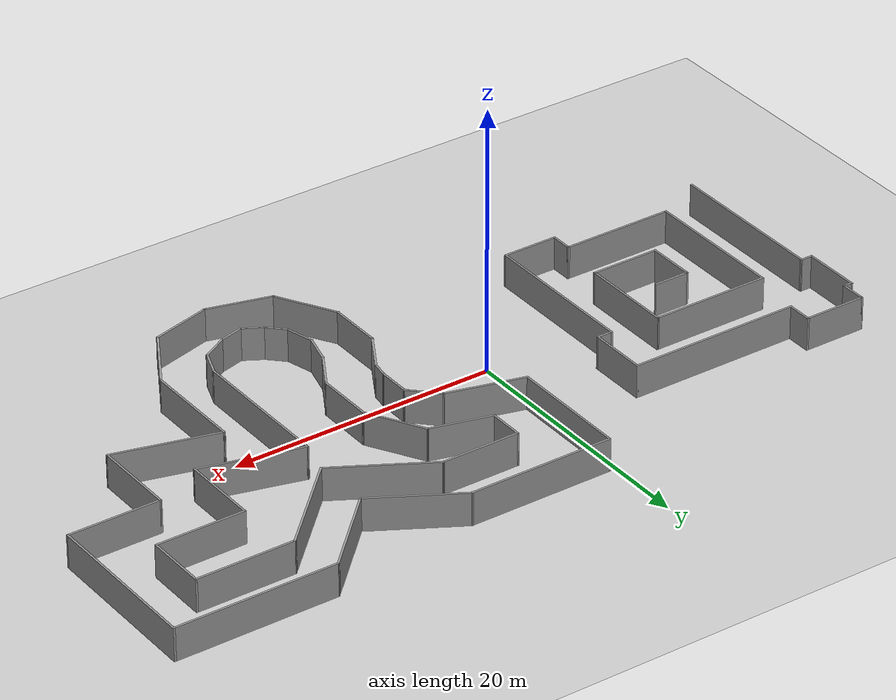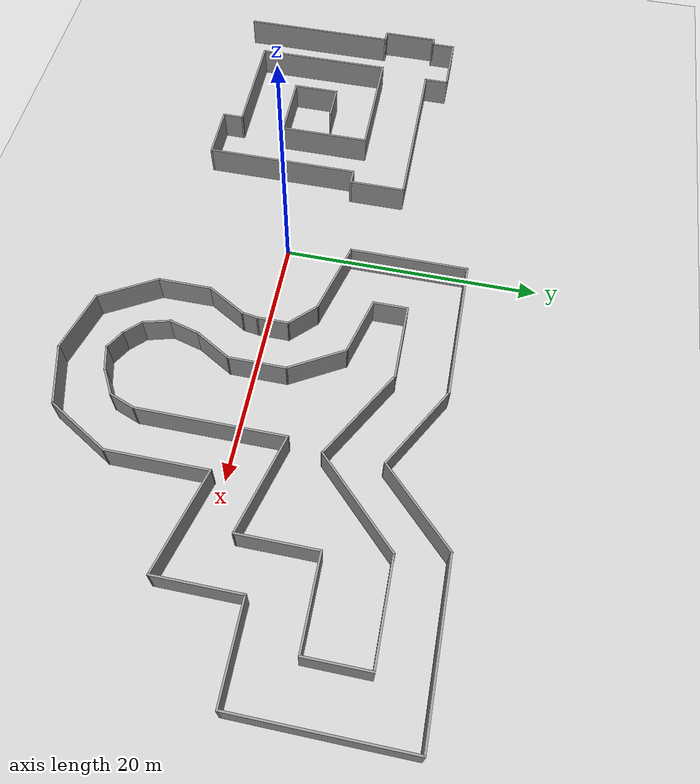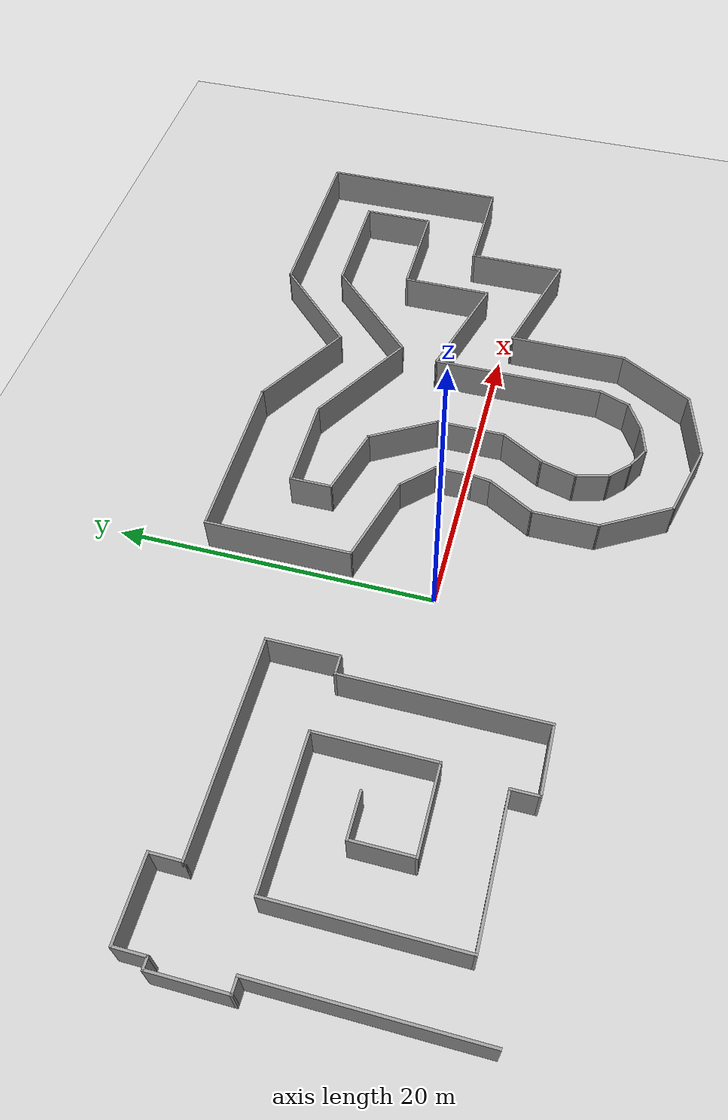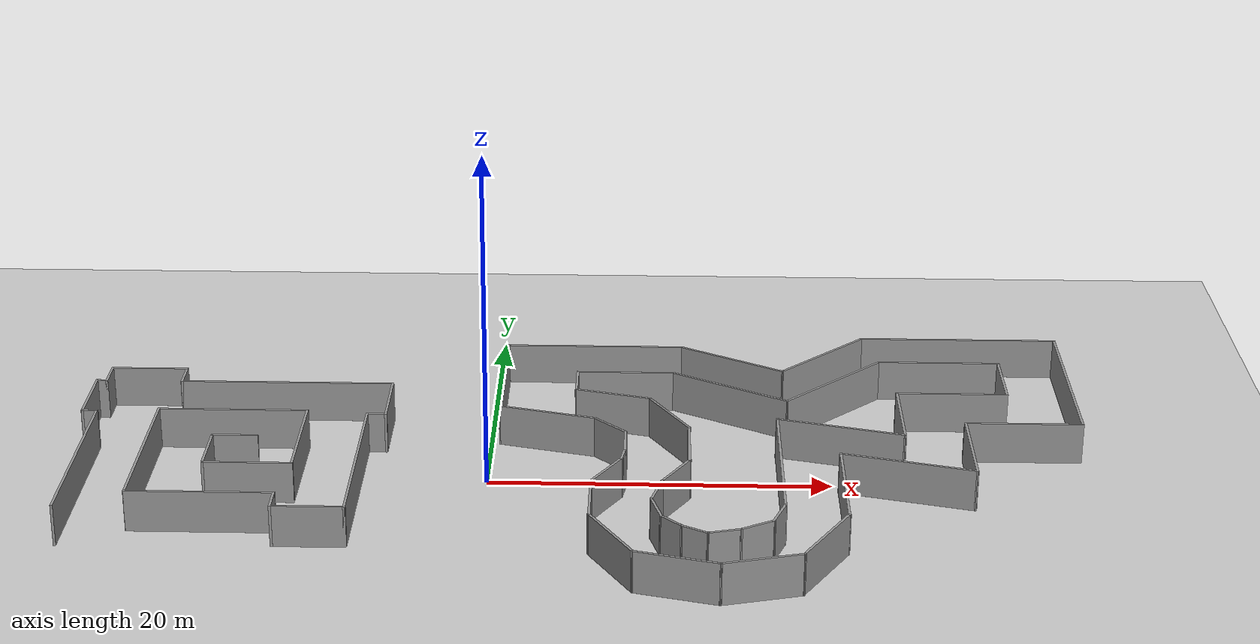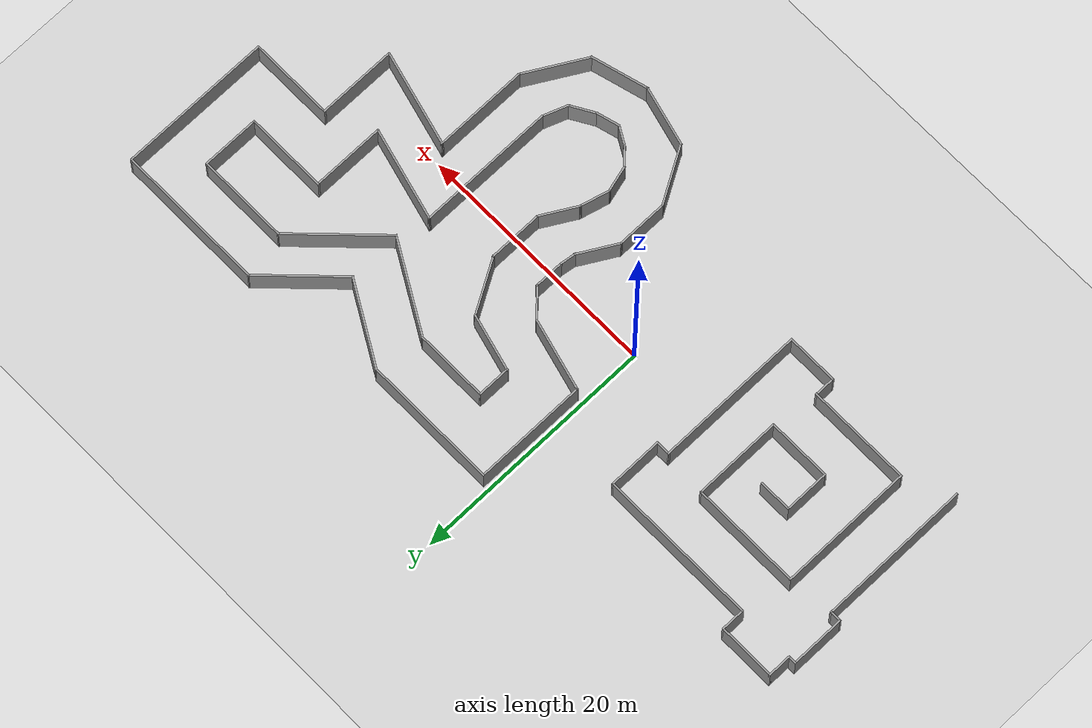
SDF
<sdf version="1.7">
 <world name="default">
  <light name="sun" type="directional">
   <pose>0 0 10 0 -0 0</pose>
   <diffuse>0.8 0.8 0.8 1</diffuse>
   <specular>0.2 0.2 0.2 1</specular>
   <attenuation>
    <range>1000</range>
    <constant>0.9</constant>
    <linear>0.01</linear>
    <quadratic>0.001</quadratic>
   </attenuation>
   <direction>-0.5 0.1 -0.9</direction>
   <spot><inner_angle>0</inner_angle><outer_angle>0</outer_angle><falloff>0</falloff></spot>
  </light>
  <model name="ground_plane">
   <static>1</static>
   <link name="link">
    <collision name="collision">
     <geometry><plane><normal>0 0 1</normal><size>100 100</size></plane></geometry>
     <surface><friction><ode><mu>100</mu><mu2>50</mu2></ode></friction></surface>
    </collision>
    <visual name="visual">
     <cast_shadows>0</cast_shadows>
     <geometry><plane><normal>0 0 1</normal><size>100 100</size></plane></geometry>
     <material>
      <script><uri>file://media/materials/scripts/gazebo.material</uri><name>Gazebo/Grey</name></script>
     </material>
    </visual>
   </link>
  </model>
  <gravity>0 0 -9.8</gravity>
  <magnetic_field>6e-06 2.3e-05 -4.2e-05</magnetic_field>
  <atmosphere type="adiabatic"/>
  <physics type="ode">
   <max_step_size>0.001</max_step_size>
   <real_time_factor>1</real_time_factor>
   <real_time_update_rate>1000</real_time_update_rate>
  </physics>
  <scene><ambient>0.4 0.4 0.4 1</ambient><background>0.7 0.7 0.7 1</background><shadows>1</shadows></scene>
  <audio><device>default</device></audio>
  <spherical_coordinates>
   <surface_model>EARTH_WGS84</surface_model>
   <latitude_deg>0</latitude_deg>
   <longitude_deg>0</longitude_deg>
   <elevation>0</elevation>
   <heading_deg>0</heading_deg>
  </spherical_coordinates>
  <model name="map1-Scale2.5">
   <pose>-15.2546 0.847586 0 0 -0 0</pose>
   <link name="Wall_100">
    <collision name="Wall_100_Collision">
     <geometry><box><size>7.25 0.15 2.5</size></box></geometry>
     <pose>0 0 1.25 0 -0 0</pose>
    </collision>
    <visual name="Wall_100_Visual">
     <pose>0 0 1.25 0 -0 0</pose>
     <geometry><box><size>7.25 0.15 2.5</size></box></geometry>
     <material>
      <script><uri>file://media/materials/scripts/gazebo.material</uri><name>Gazebo/Grey</name></script>
      <ambient>1 1 1 1</ambient>
     </material>
     <meta><layer>0</layer></meta>
    </visual>
    <pose>4.325 -0.125 0 0 -0 -1.5708</pose>
   </link>
   <link name="Wall_101">
    <collision name="Wall_101_Collision">
     <geometry><box><size>5.25 0.15 2.5</size></box></geometry>
     <pose>0 0 1.25 0 -0 0</pose>
    </collision>
    <visual name="Wall_101_Visual">
     <pose>0 0 1.25 0 -0 0</pose>
     <geometry><box><size>5.25 0.15 2.5</size></box></geometry>
     <material>
      <script><uri>file://media/materials/scripts/gazebo.material</uri><name>Gazebo/Grey</name></script>
      <ambient>1 1 1 1</ambient>
     </material>
     <meta><layer>0</layer></meta>
    </visual>
    <pose>1.775 -3.675 0 0 -0 3.14159</pose>
   </link>
   <link name="Wall_102">
    <collision name="Wall_102_Collision">
     <geometry><box><size>3.75 0.15 2.5</size></box></geometry>
     <pose>0 0 1.25 0 -0 0</pose>
    </collision>
    <visual name="Wall_102_Visual">
     <pose>0 0 1.25 0 -0 0</pose>
     <geometry><box><size>3.75 0.15 2.5</size></box></geometry>
     <material>
      <script><uri>file://media/materials/scripts/gazebo.material</uri><name>Gazebo/Grey</name></script>
      <ambient>1 1 1 1</ambient>
     </material>
     <meta><layer>0</layer></meta>
    </visual>
    <pose>-0.775 -1.875 0 0 -0 1.5708</pose>
   </link>
   <link name="Wall_103">
    <collision name="Wall_103_Collision">
     <geometry><box><size>2.75 0.15 2.5</size></box></geometry>
     <pose>0 0 1.25 0 -0 0</pose>
    </collision>
    <visual name="Wall_103_Visual">
     <pose>0 0 1.25 0 -0 0</pose>
     <geometry><box><size>2.75 0.15 2.5</size></box></geometry>
     <material>
      <script><uri>file://media/materials/scripts/gazebo.material</uri><name>Gazebo/Grey</name></script>
      <ambient>1 1 1 1</ambient>
     </material>
     <meta><layer>0</layer></meta>
    </visual>
    <pose>0.525 -0.075 0 0 -0 0</pose>
   </link>
   <link name="Wall_84">
    <collision name="Wall_84_Collision">
     <geometry><box><size>12.5 0.15 2.5</size></box></geometry>
     <pose>0 0 1.25 0 -0 0</pose>
    </collision>
    <visual name="Wall_84_Visual">
     <pose>0 0 1.25 0 -0 0</pose>
     <geometry><box><size>12.5 0.15 2.5</size></box></geometry>
     <material>
      <script><uri>file://media/materials/scripts/gazebo.material</uri><name>Gazebo/Grey</name></script>
      <ambient>1 1 1 1</ambient>
     </material>
     <meta><layer>0</layer></meta>
    </visual>
    <pose>-8.175 -3.1 0 0 -0 1.5708</pose>
   </link>
   <link name="Wall_85">
    <collision name="Wall_85_Collision">
     <geometry><box><size>1 0.15 2.5</size></box></geometry>
     <pose>0 0 1.25 0 -0 0</pose>
    </collision>
    <visual name="Wall_85_Visual">
     <pose>0 0 1.25 0 -0 0</pose>
     <geometry><box><size>1 0.15 2.5</size></box></geometry>
     <material>
      <script><uri>file://media/materials/scripts/gazebo.material</uri><name>Gazebo/Grey</name></script>
      <ambient>1 1 1 1</ambient>
     </material>
     <meta><layer>0</layer></meta>
    </visual>
    <pose>-8.6 3.075 0 0 -0 3.14159</pose>
   </link>
   <link name="Wall_86">
    <collision name="Wall_86_Collision">
     <geometry><box><size>4.5 0.15 2.5</size></box></geometry>
     <pose>0 0 1.25 0 -0 0</pose>
    </collision>
    <visual name="Wall_86_Visual">
     <pose>0 0 1.25 0 -0 0</pose>
     <geometry><box><size>4.5 0.15 2.5</size></box></geometry>
     <material>
      <script><uri>file://media/materials/scripts/gazebo.material</uri><name>Gazebo/Grey</name></script>
      <ambient>1 1 1 1</ambient>
     </material>
     <meta><layer>0</layer></meta>
    </visual>
    <pose>-9.025 5.25 0 0 -0 1.5708</pose>
   </link>
   <link name="Wall_87">
    <collision name="Wall_87_Collision">
     <geometry><box><size>0.75 0.15 2.5</size></box></geometry>
     <pose>0 0 1.25 0 -0 0</pose>
    </collision>
    <visual name="Wall_87_Visual">
     <pose>0 0 1.25 0 -0 0</pose>
     <geometry><box><size>0.75 0.15 2.5</size></box></geometry>
     <material>
      <script><uri>file://media/materials/scripts/gazebo.material</uri><name>Gazebo/Grey</name></script>
      <ambient>1 1 1 1</ambient>
     </material>
     <meta><layer>0</layer></meta>
    </visual>
    <pose>-8.725 7.425 0 0 -0 0</pose>
   </link>
   <link name="Wall_88">
    <collision name="Wall_88_Collision">
     <geometry><box><size>2 0.15 2.5</size></box></geometry>
     <pose>0 0 1.25 0 -0 0</pose>
    </collision>
    <visual name="Wall_88_Visual">
     <pose>0 0 1.25 0 -0 0</pose>
     <geometry><box><size>2 0.15 2.5</size></box></geometry>
     <material>
      <script><uri>file://media/materials/scripts/gazebo.material</uri><name>Gazebo/Grey</name></script>
      <ambient>1 1 1 1</ambient>
     </material>
     <meta><layer>0</layer></meta>
    </visual>
    <pose>-8.425 8.35 0 0 -0 1.5708</pose>
   </link>
   <link name="Wall_89">
    <collision name="Wall_89_Collision">
     <geometry><box><size>4.75 0.15 2.5</size></box></geometry>
     <pose>0 0 1.25 0 -0 0</pose>
    </collision>
    <visual name="Wall_89_Visual">
     <pose>0 0 1.25 0 -0 0</pose>
     <geometry><box><size>4.75 0.15 2.5</size></box></geometry>
     <material>
      <script><uri>file://media/materials/scripts/gazebo.material</uri><name>Gazebo/Grey</name></script>
      <ambient>1 1 1 1</ambient>
     </material>
     <meta><layer>0</layer></meta>
    </visual>
    <pose>-6.125 9.275 0 0 -0 0</pose>
   </link>
   <link name="Wall_90">
    <collision name="Wall_90_Collision">
     <geometry><box><size>2 0.15 2.5</size></box></geometry>
     <pose>0 0 1.25 0 -0 0</pose>
    </collision>
    <visual name="Wall_90_Visual">
     <pose>0 0 1.25 0 -0 0</pose>
     <geometry><box><size>2 0.15 2.5</size></box></geometry>
     <material>
      <script><uri>file://media/materials/scripts/gazebo.material</uri><name>Gazebo/Grey</name></script>
      <ambient>1 1 1 1</ambient>
     </material>
     <meta><layer>0</layer></meta>
    </visual>
    <pose>-3.825 8.35 0 0 -0 -1.5708</pose>
   </link>
   <link name="Wall_91">
    <collision name="Wall_91_Collision">
     <geometry><box><size>13 0.15 2.5</size></box></geometry>
     <pose>0 0 1.25 0 -0 0</pose>
    </collision>
    <visual name="Wall_91_Visual">
     <pose>0 0 1.25 0 -0 0</pose>
     <geometry><box><size>13 0.15 2.5</size></box></geometry>
     <material>
      <script><uri>file://media/materials/scripts/gazebo.material</uri><name>Gazebo/Grey</name></script>
      <ambient>1 1 1 1</ambient>
     </material>
     <meta><layer>0</layer></meta>
    </visual>
    <pose>2.6 7.425 0 0 -0 0</pose>
   </link>
   <link name="Wall_92">
    <collision name="Wall_92_Collision">
     <geometry><box><size>4.5 0.15 2.5</size></box></geometry>
     <pose>0 0 1.25 0 -0 0</pose>
    </collision>
    <visual name="Wall_92_Visual">
     <pose>0 0 1.25 0 -0 0</pose>
     <geometry><box><size>4.5 0.15 2.5</size></box></geometry>
     <material>
      <script><uri>file://media/materials/scripts/gazebo.material</uri><name>Gazebo/Grey</name></script>
      <ambient>1 1 1 1</ambient>
     </material>
     <meta><layer>0</layer></meta>
    </visual>
    <pose>9.025 5.25 0 0 -0 -1.5708</pose>
   </link>
   <link name="Wall_93">
    <collision name="Wall_93_Collision">
     <geometry><box><size>1.25 0.15 2.5</size></box></geometry>
     <pose>0 0 1.25 0 -0 0</pose>
    </collision>
    <visual name="Wall_93_Visual">
     <pose>0 0 1.25 0 -0 0</pose>
     <geometry><box><size>1.25 0.15 2.5</size></box></geometry>
     <material>
      <script><uri>file://media/materials/scripts/gazebo.material</uri><name>Gazebo/Grey</name></script>
      <ambient>1 1 1 1</ambient>
     </material>
     <meta><layer>0</layer></meta>
    </visual>
    <pose>8.475 3.075 0 0 -0 3.14159</pose>
   </link>
   <link name="Wall_94">
    <collision name="Wall_94_Collision">
     <geometry><box><size>12.25 0.15 2.5</size></box></geometry>
     <pose>0 0 1.25 0 -0 0</pose>
    </collision>
    <visual name="Wall_94_Visual">
     <pose>0 0 1.25 0 -0 0</pose>
     <geometry><box><size>12.25 0.15 2.5</size></box></geometry>
     <material>
      <script><uri>file://media/materials/scripts/gazebo.material</uri><name>Gazebo/Grey</name></script>
      <ambient>1 1 1 1</ambient>
     </material>
     <meta><layer>0</layer></meta>
    </visual>
    <pose>7.925 -2.975 0 0 -0 -1.5708</pose>
   </link>
   <link name="Wall_95">
    <collision name="Wall_95_Collision">
     <geometry><box><size>4.25 0.15 2.5</size></box></geometry>
     <pose>0 0 1.25 0 -0 0</pose>
    </collision>
    <visual name="Wall_95_Visual">
     <pose>0 0 1.25 0 -0 0</pose>
     <geometry><box><size>4.25 0.15 2.5</size></box></geometry>
     <material>
      <script><uri>file://media/materials/scripts/gazebo.material</uri><name>Gazebo/Grey</name></script>
      <ambient>1 1 1 1</ambient>
     </material>
     <meta><layer>0</layer></meta>
    </visual>
    <pose>5.875 -9.025 0 0 -0 3.14159</pose>
   </link>
   <link name="Wall_96">
    <collision name="Wall_96_Collision">
     <geometry><box><size>1.75 0.15 2.5</size></box></geometry>
     <pose>0 0 1.25 0 -0 0</pose>
    </collision>
    <visual name="Wall_96_Visual">
     <pose>0 0 1.25 0 -0 0</pose>
     <geometry><box><size>1.75 0.15 2.5</size></box></geometry>
     <material>
      <script><uri>file://media/materials/scripts/gazebo.material</uri><name>Gazebo/Grey</name></script>
      <ambient>1 1 1 1</ambient>
     </material>
     <meta><layer>0</layer></meta>
    </visual>
    <pose>3.825 -8.225 0 0 -0 1.5708</pose>
   </link>
   <link name="Wall_97">
    <collision name="Wall_97_Collision">
     <geometry><box><size>8.5 0.15 2.5</size></box></geometry>
     <pose>0 0 1.25 0 -0 0</pose>
    </collision>
    <visual name="Wall_97_Visual">
     <pose>0 0 1.25 0 -0 0</pose>
     <geometry><box><size>8.5 0.15 2.5</size></box></geometry>
     <material>
      <script><uri>file://media/materials/scripts/gazebo.material</uri><name>Gazebo/Grey</name></script>
      <ambient>1 1 1 1</ambient>
     </material>
     <meta><layer>0</layer></meta>
    </visual>
    <pose>-0.35 -7.425 0 0 -0 3.14159</pose>
   </link>
   <link name="Wall_98">
    <collision name="Wall_98_Collision">
     <geometry><box><size>11 0.15 2.5</size></box></geometry>
     <pose>0 0 1.25 0 -0 0</pose>
    </collision>
    <visual name="Wall_98_Visual">
     <pose>0 0 1.25 0 -0 0</pose>
     <geometry><box><size>11 0.15 2.5</size></box></geometry>
     <material>
      <script><uri>file://media/materials/scripts/gazebo.material</uri><name>Gazebo/Grey</name></script>
      <ambient>1 1 1 1</ambient>
     </material>
     <meta><layer>0</layer></meta>
    </visual>
    <pose>-4.525 -2 0 0 -0 1.5708</pose>
   </link>
   <link name="Wall_99">
    <collision name="Wall_99_Collision">
     <geometry><box><size>9 0.15 2.5</size></box></geometry>
     <pose>0 0 1.25 0 -0 0</pose>
    </collision>
    <visual name="Wall_99_Visual">
     <pose>0 0 1.25 0 -0 0</pose>
     <geometry><box><size>9 0.15 2.5</size></box></geometry>
     <material>
      <script><uri>file://media/materials/scripts/gazebo.material</uri><name>Gazebo/Grey</name></script>
      <ambient>1 1 1 1</ambient>
     </material>
     <meta><layer>0</layer></meta>
    </visual>
    <pose>-0.1 3.425 0 0 -0 0</pose>
   </link>
   <static>1</static>
  </model>
  <model name="map2-Scaled2.5">
   <pose>17.6419 0.926122 0 0 -0 0</pose>
   <link name="Wall_39">
    <collision name="Wall_39_Collision">
     <geometry><box><size>6 0.15 2.5</size></box></geometry>
     <pose>0 0 1.25 0 -0 0</pose>
    </collision>
    <visual name="Wall_39_Visual">
     <pose>0 0 1.25 0 -0 0</pose>
     <geometry><box><size>6 0.15 2.5</size></box></geometry>
     <material>
      <script><uri>file://media/materials/scripts/gazebo.material</uri><name>Gazebo/Grey</name></script>
      <ambient>1 1 1 1</ambient>
     </material>
     <meta><layer>0</layer></meta>
    </visual>
    <pose>-14.3142 3.53465 0 0 -0 2.87979</pose>
   </link>
   <link name="Wall_40">
    <collision name="Wall_40_Collision">
     <geometry><box><size>9.25 0.15 2.5</size></box></geometry>
     <pose>0 0 1.25 0 -0 0</pose>
    </collision>
    <visual name="Wall_40_Visual">
     <pose>0 0 1.25 0 -0 0</pose>
     <geometry><box><size>9.25 0.15 2.5</size></box></geometry>
     <material>
      <script><uri>file://media/materials/scripts/gazebo.material</uri><name>Gazebo/Grey</name></script>
      <ambient>1 1 1 1</ambient>
     </material>
     <meta><layer>0</layer></meta>
    </visual>
    <pose>-17.1396 8.8417 0 0 -0 1.5708</pose>
   </link>
   <link name="Wall_41">
    <collision name="Wall_41_Collision">
     <geometry><box><size>11 0.15 2.5</size></box></geometry>
     <pose>0 0 1.25 0 -0 0</pose>
    </collision>
    <visual name="Wall_41_Visual">
     <pose>0 0 1.25 0 -0 0</pose>
     <geometry><box><size>11 0.15 2.5</size></box></geometry>
     <material>
      <script><uri>file://media/materials/scripts/gazebo.material</uri><name>Gazebo/Grey</name></script>
      <ambient>1 1 1 1</ambient>
     </material>
     <meta><layer>0</layer></meta>
    </visual>
    <pose>-11.7146 13.3917 0 0 -0 0</pose>
   </link>
   <link name="Wall_42">
    <collision name="Wall_42_Collision">
     <geometry><box><size>7.25 0.15 2.5</size></box></geometry>
     <pose>0 0 1.25 0 -0 0</pose>
    </collision>
    <visual name="Wall_42_Visual">
     <pose>0 0 1.25 0 -0 0</pose>
     <geometry><box><size>7.25 0.15 2.5</size></box></geometry>
     <material>
      <script><uri>file://media/materials/scripts/gazebo.material</uri><name>Gazebo/Grey</name></script>
      <ambient>1 1 1 1</ambient>
     </material>
     <meta><layer>0</layer></meta>
    </visual>
    <pose>-3.21519 11.6167 0 0 -0 -0.523599</pose>
   </link>
   <link name="Wall_43">
    <collision name="Wall_43_Collision">
     <geometry><box><size>7.5 0.15 2.5</size></box></geometry>
     <pose>0 0 1.25 0 -0 0</pose>
    </collision>
    <visual name="Wall_43_Visual">
     <pose>0 0 1.25 0 -0 0</pose>
     <geometry><box><size>7.5 0.15 2.5</size></box></geometry>
     <material>
      <script><uri>file://media/materials/scripts/gazebo.material</uri><name>Gazebo/Grey</name></script>
      <ambient>1 1 1 1</ambient>
     </material>
     <meta><layer>0</layer></meta>
    </visual>
    <pose>2.45782 12.4403 0 0 -0 0.785398</pose>
   </link>
   <link name="Wall_44">
    <collision name="Wall_44_Collision">
     <geometry><box><size>12.25 0.15 2.5</size></box></geometry>
     <pose>0 0 1.25 0 -0 0</pose>
    </collision>
    <visual name="Wall_44_Visual">
     <pose>0 0 1.25 0 -0 0</pose>
     <geometry><box><size>12.25 0.15 2.5</size></box></geometry>
     <material>
      <script><uri>file://media/materials/scripts/gazebo.material</uri><name>Gazebo/Grey</name></script>
      <ambient>1 1 1 1</ambient>
     </material>
     <meta><layer>0</layer></meta>
    </visual>
    <pose>11.1064 15.0389 0 0 -0 0</pose>
   </link>
   <link name="Wall_45">
    <collision name="Wall_45_Collision">
     <geometry><box><size>12.5 0.15 2.5</size></box></geometry>
     <pose>0 0 1.25 0 -0 0</pose>
    </collision>
    <visual name="Wall_45_Visual">
     <pose>0 0 1.25 0 -0 0</pose>
     <geometry><box><size>12.5 0.15 2.5</size></box></geometry>
     <material>
      <script><uri>file://media/materials/scripts/gazebo.material</uri><name>Gazebo/Grey</name></script>
      <ambient>1 1 1 1</ambient>
     </material>
     <meta><layer>0</layer></meta>
    </visual>
    <pose>17.1564 8.86393 0 0 -0 -1.5708</pose>
   </link>
   <link name="Wall_46">
    <collision name="Wall_46_Collision">
     <geometry><box><size>7 0.15 2.5</size></box></geometry>
     <pose>0 0 1.25 0 -0 0</pose>
    </collision>
    <visual name="Wall_46_Visual">
     <pose>0 0 1.25 0 -0 0</pose>
     <geometry><box><size>7 0.15 2.5</size></box></geometry>
     <material>
      <script><uri>file://media/materials/scripts/gazebo.material</uri><name>Gazebo/Grey</name></script>
      <ambient>1 1 1 1</ambient>
     </material>
     <meta><layer>0</layer></meta>
    </visual>
    <pose>13.7314 2.68893 0 0 -0 3.14159</pose>
   </link>
   <link name="Wall_47">
    <collision name="Wall_47_Collision">
     <geometry><box><size>6.5 0.15 2.5</size></box></geometry>
     <pose>0 0 1.25 0 -0 0</pose>
    </collision>
    <visual name="Wall_47_Visual">
     <pose>0 0 1.25 0 -0 0</pose>
     <geometry><box><size>6.5 0.15 2.5</size></box></geometry>
     <material>
      <script><uri>file://media/materials/scripts/gazebo.material</uri><name>Gazebo/Grey</name></script>
      <ambient>1 1 1 1</ambient>
     </material>
     <meta><layer>0</layer></meta>
    </visual>
    <pose>10.3064 -0.486068 0 0 -0 -1.5708</pose>
   </link>
   <link name="Wall_48">
    <collision name="Wall_48_Collision">
     <geometry><box><size>8 0.15 2.5</size></box></geometry>
     <pose>0 0 1.25 0 -0 0</pose>
    </collision>
    <visual name="Wall_48_Visual">
     <pose>0 0 1.25 0 -0 0</pose>
     <geometry><box><size>8 0.15 2.5</size></box></geometry>
     <material>
      <script><uri>file://media/materials/scripts/gazebo.material</uri><name>Gazebo/Grey</name></script>
      <ambient>1 1 1 1</ambient>
     </material>
     <meta><layer>0</layer></meta>
    </visual>
    <pose>6.51518 -2.6452 0 0 -0 2.87979</pose>
   </link>
   <link name="Wall_49">
    <collision name="Wall_49_Collision">
     <geometry><box><size>7.75 0.15 2.5</size></box></geometry>
     <pose>0 0 1.25 0 -0 0</pose>
    </collision>
    <visual name="Wall_49_Visual">
     <pose>0 0 1.25 0 -0 0</pose>
     <geometry><box><size>7.75 0.15 2.5</size></box></geometry>
     <material>
      <script><uri>file://media/materials/scripts/gazebo.material</uri><name>Gazebo/Grey</name></script>
      <ambient>1 1 1 1</ambient>
     </material>
     <meta><layer>0</layer></meta>
    </visual>
    <pose>2.72392 -5.42934 0 0 -0 -1.5708</pose>
   </link>
   <link name="Wall_50">
    <collision name="Wall_50_Collision">
     <geometry><box><size>5.5 0.15 2.5</size></box></geometry>
     <pose>0 0 1.25 0 -0 0</pose>
    </collision>
    <visual name="Wall_50_Visual">
     <pose>0 0 1.25 0 -0 0</pose>
     <geometry><box><size>5.5 0.15 2.5</size></box></geometry>
     <material>
      <script><uri>file://media/materials/scripts/gazebo.material</uri><name>Gazebo/Grey</name></script>
      <ambient>1 1 1 1</ambient>
     </material>
     <meta><layer>0</layer></meta>
    </visual>
    <pose>1.38642 -11.546 0 0 -0 -2.0944</pose>
   </link>
   <link name="Wall_51">
    <collision name="Wall_51_Collision">
     <geometry><box><size>4.75 0.15 2.5</size></box></geometry>
     <pose>0 0 1.25 0 -0 0</pose>
    </collision>
    <visual name="Wall_51_Visual">
     <pose>0 0 1.25 0 -0 0</pose>
     <geometry><box><size>4.75 0.15 2.5</size></box></geometry>
     <material>
      <script><uri>file://media/materials/scripts/gazebo.material</uri><name>Gazebo/Grey</name></script>
      <ambient>1 1 1 1</ambient>
     </material>
     <meta><layer>0</layer></meta>
    </visual>
    <pose>-2.17271 -14.4579 0 0 -0 -2.87979</pose>
   </link>
   <link name="Wall_52">
    <collision name="Wall_52_Collision">
     <geometry><box><size>5 0.15 2.5</size></box></geometry>
     <pose>0 0 1.25 0 -0 0</pose>
    </collision>
    <visual name="Wall_52_Visual">
     <pose>0 0 1.25 0 -0 0</pose>
     <geometry><box><size>5 0.15 2.5</size></box></geometry>
     <material>
      <script><uri>file://media/materials/scripts/gazebo.material</uri><name>Gazebo/Grey</name></script>
      <ambient>1 1 1 1</ambient>
     </material>
     <meta><layer>0</layer></meta>
    </visual>
    <pose>-6.73671 -14.4255 0 0 -0 2.87979</pose>
   </link>
   <link name="Wall_53">
    <collision name="Wall_53_Collision">
     <geometry><box><size>5 0.15 2.5</size></box></geometry>
     <pose>0 0 1.25 0 -0 0</pose>
    </collision>
    <visual name="Wall_53_Visual">
     <pose>0 0 1.25 0 -0 0</pose>
     <geometry><box><size>5 0.15 2.5</size></box></geometry>
     <material>
      <script><uri>file://media/materials/scripts/gazebo.material</uri><name>Gazebo/Grey</name></script>
      <ambient>1 1 1 1</ambient>
     </material>
     <meta><layer>0</layer></meta>
    </visual>
    <pose>-10.2916 -11.6978 0 0 -0 2.0944</pose>
   </link>
   <link name="Wall_54">
    <collision name="Wall_54_Collision">
     <geometry><box><size>4.25 0.15 2.5</size></box></geometry>
     <pose>0 0 1.25 0 -0 0</pose>
    </collision>
    <visual name="Wall_54_Visual">
     <pose>0 0 1.25 0 -0 0</pose>
     <geometry><box><size>4.25 0.15 2.5</size></box></geometry>
     <material>
      <script><uri>file://media/materials/scripts/gazebo.material</uri><name>Gazebo/Grey</name></script>
      <ambient>1 1 1 1</ambient>
     </material>
     <meta><layer>0</layer></meta>
    </visual>
    <pose>-11.5041 -7.54765 0 0 -0 1.5708</pose>
   </link>
   <link name="Wall_55">
    <collision name="Wall_55_Collision">
     <geometry><box><size>3.5 0.15 2.5</size></box></geometry>
     <pose>0 0 1.25 0 -0 0</pose>
    </collision>
    <visual name="Wall_55_Visual">
     <pose>0 0 1.25 0 -0 0</pose>
     <geometry><box><size>3.5 0.15 2.5</size></box></geometry>
     <material>
      <script><uri>file://media/materials/scripts/gazebo.material</uri><name>Gazebo/Grey</name></script>
      <ambient>1 1 1 1</ambient>
     </material>
     <meta><layer>0</layer></meta>
    </visual>
    <pose>-10.6666 -4.04705 0 0 -0 1.0472</pose>
   </link>
   <link name="Wall_57">
    <collision name="Wall_57_Collision">
     <geometry><box><size>3.25 0.15 2.5</size></box></geometry>
     <pose>0 0 1.25 0 -0 0</pose>
    </collision>
    <visual name="Wall_57_Visual">
     <pose>0 0 1.25 0 -0 0</pose>
     <geometry><box><size>3.25 0.15 2.5</size></box></geometry>
     <material>
      <script><uri>file://media/materials/scripts/gazebo.material</uri><name>Gazebo/Grey</name></script>
      <ambient>1 1 1 1</ambient>
     </material>
     <meta><layer>0</layer></meta>
    </visual>
    <pose>-6.71391 -4.04005 0 0 -0 1.0472</pose>
   </link>
   <link name="Wall_58">
    <collision name="Wall_58_Collision">
     <geometry><box><size>4.5 0.15 2.5</size></box></geometry>
     <pose>0 0 1.25 0 -0 0</pose>
    </collision>
    <visual name="Wall_58_Visual">
     <pose>0 0 1.25 0 -0 0</pose>
     <geometry><box><size>4.5 0.15 2.5</size></box></geometry>
     <material>
      <script><uri>file://media/materials/scripts/gazebo.material</uri><name>Gazebo/Grey</name></script>
      <ambient>1 1 1 1</ambient>
     </material>
     <meta><layer>0</layer></meta>
    </visual>
    <pose>-5.93891 -0.522716 0 0 -0 1.5708</pose>
   </link>
   <link name="Wall_59">
    <collision name="Wall_59_Collision">
     <geometry><box><size>4.75 0.15 2.5</size></box></geometry>
     <pose>0 0 1.25 0 -0 0</pose>
    </collision>
    <visual name="Wall_59_Visual">
     <pose>0 0 1.25 0 -0 0</pose>
     <geometry><box><size>4.75 0.15 2.5</size></box></geometry>
     <material>
      <script><uri>file://media/materials/scripts/gazebo.material</uri><name>Gazebo/Grey</name></script>
      <ambient>1 1 1 1</ambient>
     </material>
     <meta><layer>0</layer></meta>
    </visual>
    <pose>-7.08891 3.64414 0 0 -0 2.0944</pose>
   </link>
   <link name="Wall_60">
    <collision name="Wall_60_Collision">
     <geometry><box><size>4.75 0.15 2.5</size></box></geometry>
     <pose>0 0 1.25 0 -0 0</pose>
    </collision>
    <visual name="Wall_60_Visual">
     <pose>0 0 1.25 0 -0 0</pose>
     <geometry><box><size>4.75 0.15 2.5</size></box></geometry>
     <material>
      <script><uri>file://media/materials/scripts/gazebo.material</uri><name>Gazebo/Grey</name></script>
      <ambient>1 1 1 1</ambient>
     </material>
     <meta><layer>0</layer></meta>
    </visual>
    <pose>-10.4605 6.23128 0 0 -0 2.87979</pose>
   </link>
   <link name="Wall_61">
    <collision name="Wall_61_Collision">
     <geometry><box><size>2.75 0.15 2.5</size></box></geometry>
     <pose>0 0 1.25 0 -0 0</pose>
    </collision>
    <visual name="Wall_61_Visual">
     <pose>0 0 1.25 0 -0 0</pose>
     <geometry><box><size>2.75 0.15 2.5</size></box></geometry>
     <material>
      <script><uri>file://media/materials/scripts/gazebo.material</uri><name>Gazebo/Grey</name></script>
      <ambient>1 1 1 1</ambient>
     </material>
     <meta><layer>0</layer></meta>
    </visual>
    <pose>-12.6822 8.12657 0 0 -0 1.5708</pose>
   </link>
   <link name="Wall_62">
    <collision name="Wall_62_Collision">
     <geometry><box><size>6 0.15 2.5</size></box></geometry>
     <pose>0 0 1.25 0 -0 0</pose>
    </collision>
    <visual name="Wall_62_Visual">
     <pose>0 0 1.25 0 -0 0</pose>
     <geometry><box><size>6 0.15 2.5</size></box></geometry>
     <material>
      <script><uri>file://media/materials/scripts/gazebo.material</uri><name>Gazebo/Grey</name></script>
      <ambient>1 1 1 1</ambient>
     </material>
     <meta><layer>0</layer></meta>
    </visual>
    <pose>-9.75717 9.42657 0 0 -0 0</pose>
   </link>
   <link name="Wall_63">
    <collision name="Wall_63_Collision">
     <geometry><box><size>8 0.15 2.5</size></box></geometry>
     <pose>0 0 1.25 0 -0 0</pose>
    </collision>
    <visual name="Wall_63_Visual">
     <pose>0 0 1.25 0 -0 0</pose>
     <geometry><box><size>8 0.15 2.5</size></box></geometry>
     <material>
      <script><uri>file://media/materials/scripts/gazebo.material</uri><name>Gazebo/Grey</name></script>
      <ambient>1 1 1 1</ambient>
     </material>
     <meta><layer>0</layer></meta>
    </visual>
    <pose>-3.43302 7.46407 0 0 -0 -0.523599</pose>
   </link>
   <link name="Wall_64">
    <collision name="Wall_64_Collision">
     <geometry><box><size>8.5 0.15 2.5</size></box></geometry>
     <pose>0 0 1.25 0 -0 0</pose>
    </collision>
    <visual name="Wall_64_Visual">
     <pose>0 0 1.25 0 -0 0</pose>
     <geometry><box><size>8.5 0.15 2.5</size></box></geometry>
     <material>
      <script><uri>file://media/materials/scripts/gazebo.material</uri><name>Gazebo/Grey</name></script>
      <ambient>1 1 1 1</ambient>
     </material>
     <meta><layer>0</layer></meta>
    </visual>
    <pose>2.9183 8.45374 0 0 -0 0.785398</pose>
   </link>
   <link name="Wall_65">
    <collision name="Wall_65_Collision">
     <geometry><box><size>7.5 0.15 2.5</size></box></geometry>
     <pose>0 0 1.25 0 -0 0</pose>
    </collision>
    <visual name="Wall_65_Visual">
     <pose>0 0 1.25 0 -0 0</pose>
     <geometry><box><size>7.5 0.15 2.5</size></box></geometry>
     <material>
      <script><uri>file://media/materials/scripts/gazebo.material</uri><name>Gazebo/Grey</name></script>
      <ambient>1 1 1 1</ambient>
     </material>
     <meta><layer>0</layer></meta>
    </visual>
    <pose>9.54547 11.4059 0 0 -0 0</pose>
   </link>
   <link name="Wall_66">
    <collision name="Wall_66_Collision">
     <geometry><box><size>4.75 0.15 2.5</size></box></geometry>
     <pose>0 0 1.25 0 -0 0</pose>
    </collision>
    <visual name="Wall_66_Visual">
     <pose>0 0 1.25 0 -0 0</pose>
     <geometry><box><size>4.75 0.15 2.5</size></box></geometry>
     <material>
      <script><uri>file://media/materials/scripts/gazebo.material</uri><name>Gazebo/Grey</name></script>
      <ambient>1 1 1 1</ambient>
     </material>
     <meta><layer>0</layer></meta>
    </visual>
    <pose>13.2205 9.10591 0 0 -0 -1.5708</pose>
   </link>
   <link name="Wall_67">
    <collision name="Wall_67_Collision">
     <geometry><box><size>6.75 0.15 2.5</size></box></geometry>
     <pose>0 0 1.25 0 -0 0</pose>
    </collision>
    <visual name="Wall_67_Visual">
     <pose>0 0 1.25 0 -0 0</pose>
     <geometry><box><size>6.75 0.15 2.5</size></box></geometry>
     <material>
      <script><uri>file://media/materials/scripts/gazebo.material</uri><name>Gazebo/Grey</name></script>
      <ambient>1 1 1 1</ambient>
     </material>
     <meta><layer>0</layer></meta>
    </visual>
    <pose>9.92047 6.80591 0 0 -0 3.14159</pose>
   </link>
   <link name="Wall_68">
    <collision name="Wall_68_Collision">
     <geometry><box><size>6 0.15 2.5</size></box></geometry>
     <pose>0 0 1.25 0 -0 0</pose>
    </collision>
    <visual name="Wall_68_Visual">
     <pose>0 0 1.25 0 -0 0</pose>
     <geometry><box><size>6 0.15 2.5</size></box></geometry>
     <material>
      <script><uri>file://media/materials/scripts/gazebo.material</uri><name>Gazebo/Grey</name></script>
      <ambient>1 1 1 1</ambient>
     </material>
     <meta><layer>0</layer></meta>
    </visual>
    <pose>6.62047 3.88091 0 0 -0 -1.5708</pose>
   </link>
   <link name="Wall_69">
    <collision name="Wall_69_Collision">
     <geometry><box><size>7.75 0.15 2.5</size></box></geometry>
     <pose>0 0 1.25 0 -0 0</pose>
    </collision>
    <visual name="Wall_69_Visual">
     <pose>0 0 1.25 0 -0 0</pose>
     <geometry><box><size>7.75 0.15 2.5</size></box></geometry>
     <material>
      <script><uri>file://media/materials/scripts/gazebo.material</uri><name>Gazebo/Grey</name></script>
      <ambient>1 1 1 1</ambient>
     </material>
     <meta><layer>0</layer></meta>
    </visual>
    <pose>2.94995 1.93942 0 0 -0 2.87979</pose>
   </link>
   <link name="Wall_70">
    <collision name="Wall_70_Collision">
     <geometry><box><size>11.25 0.15 2.5</size></box></geometry>
     <pose>0 0 1.25 0 -0 0</pose>
    </collision>
    <visual name="Wall_70_Visual">
     <pose>0 0 1.25 0 -0 0</pose>
     <geometry><box><size>11.25 0.15 2.5</size></box></geometry>
     <material>
      <script><uri>file://media/materials/scripts/gazebo.material</uri><name>Gazebo/Grey</name></script>
      <ambient>1 1 1 1</ambient>
     </material>
     <meta><layer>0</layer></meta>
    </visual>
    <pose>-0.720568 -2.62706 0 0 -0 -1.5708</pose>
   </link>
   <link name="Wall_72">
    <collision name="Wall_72_Collision">
     <geometry><box><size>2.75 0.15 2.5</size></box></geometry>
     <pose>0 0 1.25 0 -0 0</pose>
    </collision>
    <visual name="Wall_72_Visual">
     <pose>0 0 1.25 0 -0 0</pose>
     <geometry><box><size>2.75 0.15 2.5</size></box></geometry>
     <material>
      <script><uri>file://media/materials/scripts/gazebo.material</uri><name>Gazebo/Grey</name></script>
      <ambient>1 1 1 1</ambient>
     </material>
     <meta><layer>0</layer></meta>
    </visual>
    <pose>-10.5697 1.85837 0 0 -0 -0.785398</pose>
   </link>
   <link name="Wall_73">
    <collision name="Wall_73_Collision">
     <geometry><box><size>2.5 0.15 2.5</size></box></geometry>
     <pose>0 0 1.25 0 -0 0</pose>
    </collision>
    <visual name="Wall_73_Visual">
     <pose>0 0 1.25 0 -0 0</pose>
     <geometry><box><size>2.5 0.15 2.5</size></box></geometry>
     <material>
      <script><uri>file://media/materials/scripts/gazebo.material</uri><name>Gazebo/Grey</name></script>
      <ambient>1 1 1 1</ambient>
     </material>
     <meta><layer>0</layer></meta>
    </visual>
    <pose>-9.65044 -0.235872 0 0 -0 -1.5708</pose>
   </link>
   <link name="Wall_74">
    <collision name="Wall_74_Collision">
     <geometry><box><size>1.34897 0.15 2.5</size></box></geometry>
     <pose>0 0 1.25 0 -0 0</pose>
    </collision>
    <visual name="Wall_74_Visual">
     <pose>0 0 1.25 0 -0 0</pose>
     <geometry><box><size>1.34897 0.15 2.5</size></box></geometry>
     <material>
      <script><uri>file://media/materials/scripts/gazebo.material</uri><name>Gazebo/Grey</name></script>
      <ambient>1 1 1 1</ambient>
     </material>
     <meta><layer>0</layer></meta>
    </visual>
    <pose>-9.73976 -2.00367 0 0 -0 -1.72035</pose>
   </link>
   <link name="Wall_76">
    <collision name="Wall_76_Collision">
     <geometry><box><size>2.5 0.15 2.5</size></box></geometry>
     <pose>0 0 1.25 0 -0 0</pose>
    </collision>
    <visual name="Wall_76_Visual">
     <pose>0 0 1.25 0 -0 0</pose>
     <geometry><box><size>2.5 0.15 2.5</size></box></geometry>
     <material>
      <script><uri>file://media/materials/scripts/gazebo.material</uri><name>Gazebo/Grey</name></script>
      <ambient>1 1 1 1</ambient>
     </material>
     <meta><layer>0</layer></meta>
    </visual>
    <pose>-7.79303 -6.51736 0 0 -0 -1.8326</pose>
   </link>
   <link name="Wall_77">
    <collision name="Wall_77_Collision">
     <geometry><box><size>2.25 0.15 2.5</size></box></geometry>
     <pose>0 0 1.25 0 -0 0</pose>
    </collision>
    <visual name="Wall_77_Visual">
     <pose>0 0 1.25 0 -0 0</pose>
     <geometry><box><size>2.25 0.15 2.5</size></box></geometry>
     <material>
      <script><uri>file://media/materials/scripts/gazebo.material</uri><name>Gazebo/Grey</name></script>
      <ambient>1 1 1 1</ambient>
     </material>
     <meta><layer>0</layer></meta>
    </visual>
    <pose>-7.82538 -8.66654 0 0 -0 -1.309</pose>
   </link>
   <link name="Wall_78">
    <collision name="Wall_78_Collision">
     <geometry><box><size>1.75 0.15 2.5</size></box></geometry>
     <pose>0 0 1.25 0 -0 0</pose>
    </collision>
    <visual name="Wall_78_Visual">
     <pose>0 0 1.25 0 -0 0</pose>
     <geometry><box><size>1.75 0.15 2.5</size></box></geometry>
     <material>
      <script><uri>file://media/materials/scripts/gazebo.material</uri><name>Gazebo/Grey</name></script>
      <ambient>1 1 1 1</ambient>
     </material>
     <meta><layer>0</layer></meta>
    </visual>
    <pose>-6.98793 -10.2464 0 0 -0 -0.785398</pose>
   </link>
   <link name="Wall_79">
    <collision name="Wall_79_Collision">
     <geometry><box><size>1.75 0.15 2.5</size></box></geometry>
     <pose>0 0 1.25 0 -0 0</pose>
    </collision>
    <visual name="Wall_79_Visual">
     <pose>0 0 1.25 0 -0 0</pose>
     <geometry><box><size>1.75 0.15 2.5</size></box></geometry>
     <material>
      <script><uri>file://media/materials/scripts/gazebo.material</uri><name>Gazebo/Grey</name></script>
      <ambient>1 1 1 1</ambient>
     </material>
     <meta><layer>0</layer></meta>
    </visual>
    <pose>-5.72943 -11.2121 0 0 -0 -0.523599</pose>
   </link>
   <link name="Wall_80">
    <collision name="Wall_80_Collision">
     <geometry><box><size>2 0.15 2.5</size></box></geometry>
     <pose>0 0 1.25 0 -0 0</pose>
    </collision>
    <visual name="Wall_80_Visual">
     <pose>0 0 1.25 0 -0 0</pose>
     <geometry><box><size>2 0.15 2.5</size></box></geometry>
     <material>
      <script><uri>file://media/materials/scripts/gazebo.material</uri><name>Gazebo/Grey</name></script>
      <ambient>1 1 1 1</ambient>
     </material>
     <meta><layer>0</layer></meta>
    </visual>
    <pose>-4.14313 -11.3727 0 0 -0 0.261799</pose>
   </link>
   <link name="Wall_81">
    <collision name="Wall_81_Collision">
     <geometry><box><size>2.25 0.15 2.5</size></box></geometry>
     <pose>0 0 1.25 0 -0 0</pose>
    </collision>
    <visual name="Wall_81_Visual">
     <pose>0 0 1.25 0 -0 0</pose>
     <geometry><box><size>2.25 0.15 2.5</size></box></geometry>
     <material>
      <script><uri>file://media/materials/scripts/gazebo.material</uri><name>Gazebo/Grey</name></script>
      <ambient>1 1 1 1</ambient>
     </material>
     <meta><layer>0</layer></meta>
    </visual>
    <pose>-2.34032 -10.6083 0 0 -0 0.523599</pose>
   </link>
   <link name="Wall_82">
    <collision name="Wall_82_Collision">
     <geometry><box><size>2.18433 0.15 2.5</size></box></geometry>
     <pose>0 0 1.25 0 -0 0</pose>
    </collision>
    <visual name="Wall_82_Visual">
     <pose>0 0 1.25 0 -0 0</pose>
     <geometry><box><size>2.18433 0.15 2.5</size></box></geometry>
     <material>
      <script><uri>file://media/materials/scripts/gazebo.material</uri><name>Gazebo/Grey</name></script>
      <ambient>1 1 1 1</ambient>
     </material>
     <meta><layer>0</layer></meta>
    </visual>
    <pose>-1.07578 -9.13019 0 0 -0 1.21406</pose>
   </link>
   <static>1</static>
  </model>
 </world>
</sdf>
